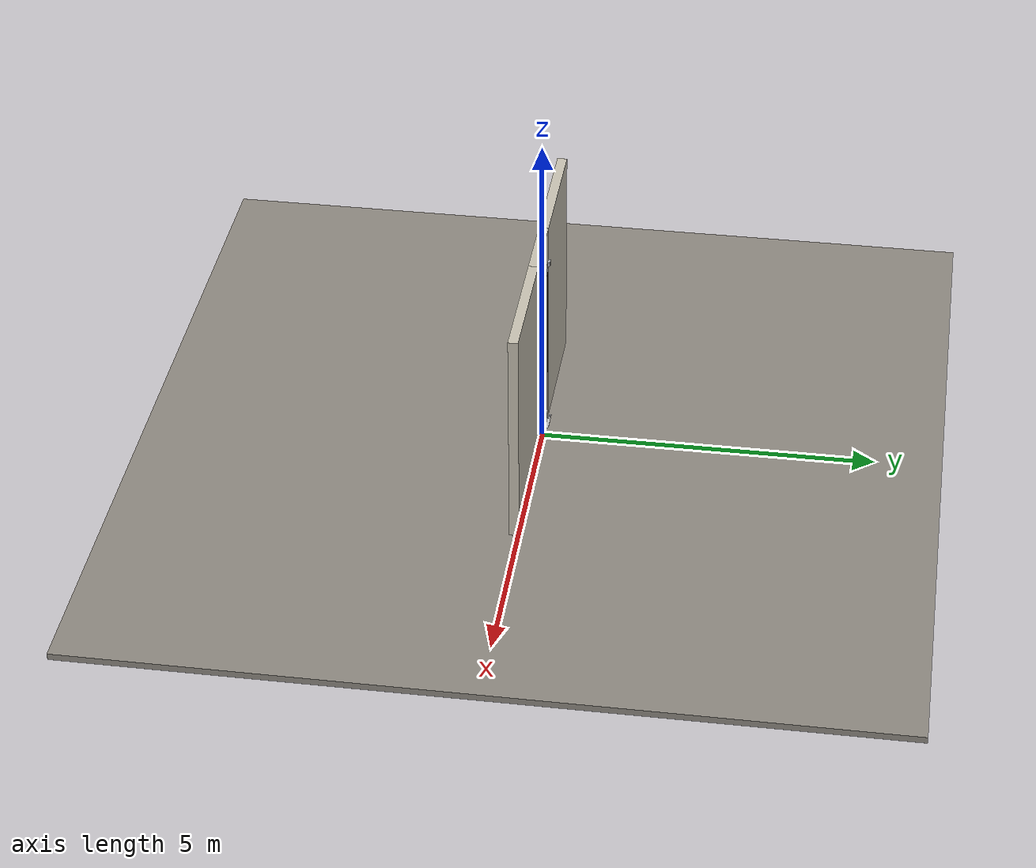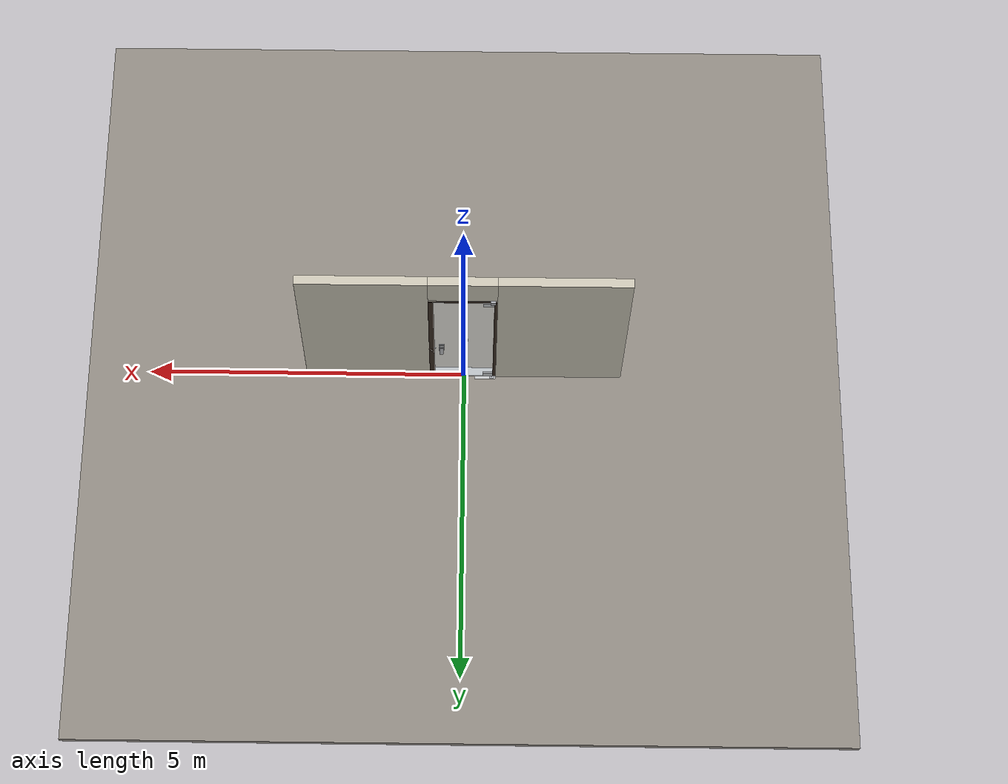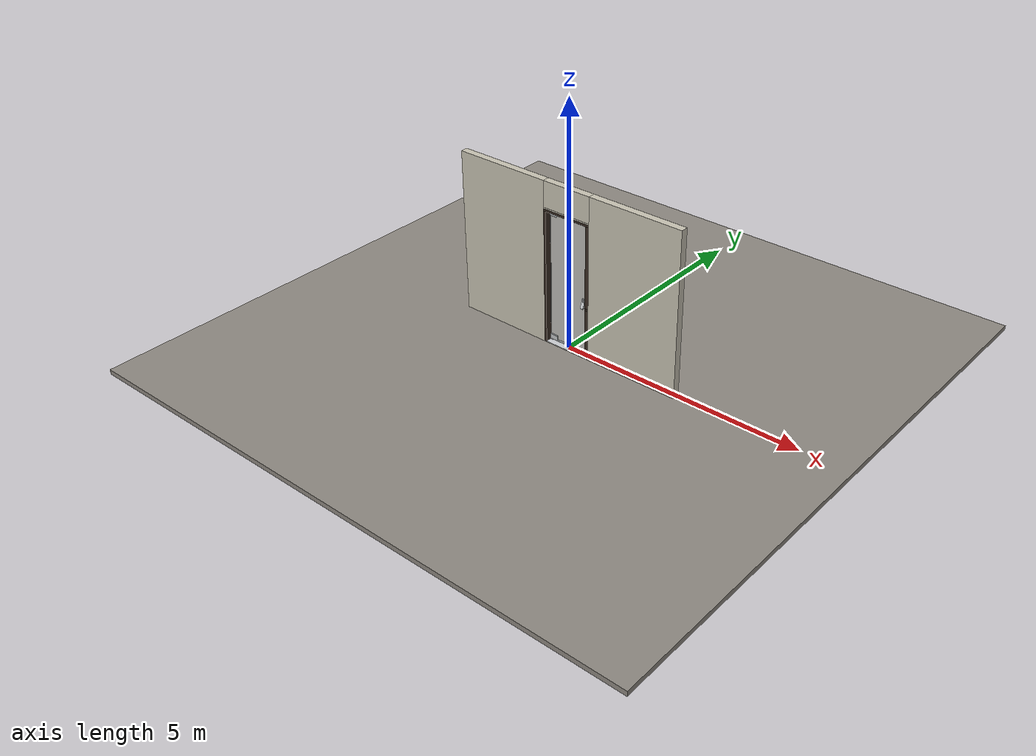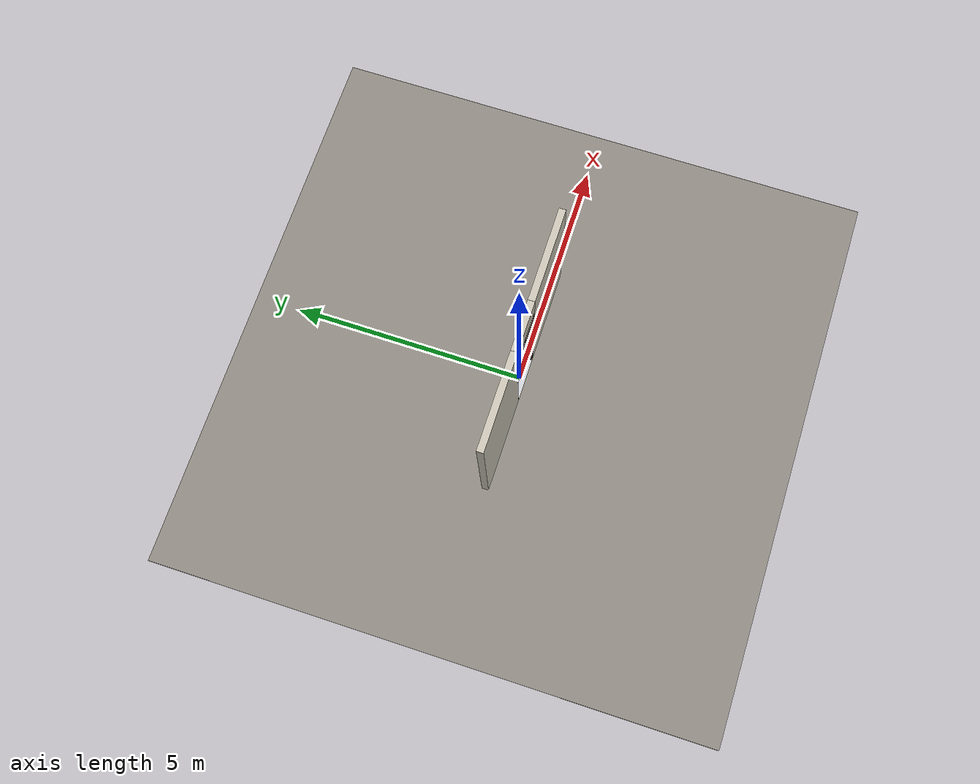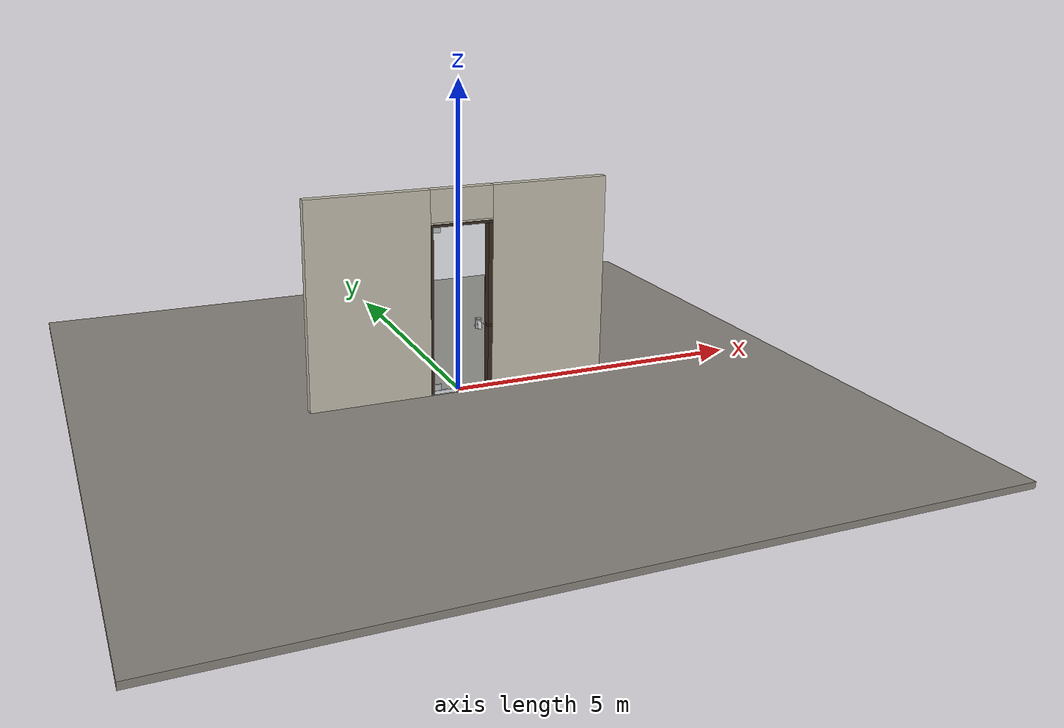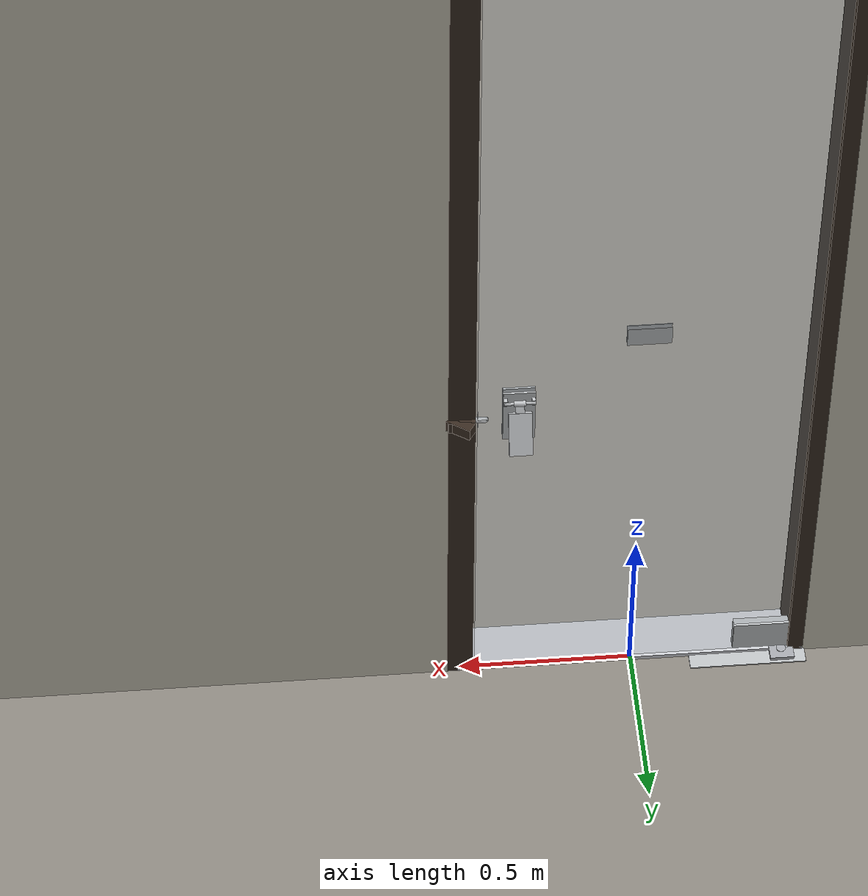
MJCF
<?xml version="1.0" ?>
<mujoco model="db0615_swing_single_full">
  <compiler angle="radian" meshdir="../../hardware" texturedir="../../textures" autolimits="true" inertiafromgeom="false"/>
  <option timestep="0.002" integrator="implicitfast" cone="elliptic" impratio="10" noslip_iterations="3">
    <flag multiccd="enable"/>
  </option>
  <size memory="16M"/>
  <default>
    <geom condim="4" solref="0.005 1" solimp="0.95 0.99 0.001"/>
    <joint solreflimit="0.005 1" solimplimit="0.95 0.99 0.001"/>
    <tendon solreflimit="0.005 1"/>
    <equality solref="0.002 1"/>
  </default>
  <visual>
    <headlight ambient="0.4 0.4 0.4" diffuse="0.7 0.7 0.7" specular="0.2 0.2 0.2"/>
    <quality shadowsize="4096"/>
    <map znear="0.01" zfar="60"/>
  </visual>
  <asset>
    <material name="mat_floor" rgba="0.55 0.53 0.5 1" specular="0.2" shininess="0.15" reflectance="0"/>
    <material name="mat_wall" rgba="0.78 0.76 0.7 1" specular="0.2" shininess="0.1" reflectance="0"/>
    <material name="mat_leaf" rgba="0.85 0.92 0.95 0.25" specular="0.2" shininess="0.95" reflectance="0.1"/>
    <material name="mat_glass_leaf" rgba="0.85 0.92 0.95 0.25" specular="0.2" shininess="0.95" reflectance="0.1"/>
    <material name="mat_patch" rgba="0.75 0.76 0.77 1" specular="0.8" shininess="0.65" reflectance="0.4"/>
    <material name="mat_hinge" rgba="0.65 0.66 0.68 1" specular="0.74" shininess="0.5" reflectance="0.36"/>
    <material name="mat_op_stainless" rgba="0.75 0.76 0.77 1" specular="0.8" shininess="0.65" reflectance="0.4"/>
    <material name="mat_bolt" rgba="0.75 0.76 0.77 1" specular="0.8" shininess="0.65" reflectance="0.4"/>
    <material name="mat_frame" rgba="0.22 0.17 0.13 1" specular="0.8" shininess="0.6" reflectance="0.4"/>
    <material name="mat_threshold" rgba="0.8 0.81 0.83 1" specular="0.8" shininess="0.6" reflectance="0.4"/>
    <material name="mat_closer" rgba="0.75 0.76 0.77 1" specular="0.8" shininess="0.65" reflectance="0.4"/>
    <material name="mat_sign" rgba="0.75 0.76 0.77 1" specular="0.8" shininess="0.65" reflectance="0.4"/>
    <texture name="skybox" type="skybox" builtin="gradient" rgb1="0.6 0.7 0.85" rgb2="0.9 0.92 0.95" width="256" height="256"/>
  </asset>
  <worldbody>
    <light name="sun" pos="1.5 -2.5 4" dir="-0.3 0.5 -0.8" directional="true" diffuse="0.8 0.8 0.8" specular="0.3 0.3 0.3" castshadow="true"/>
    <light name="fill" pos="-1.5 2.5 3" dir="0.3 -0.5 -0.7" directional="true" diffuse="0.35 0.35 0.4" castshadow="false"/>
    <camera name="robot_view" pos="0 -3.26825 2.27645" xyaxes="1 0 0 0 0.26963 0.962964" fovy="52"/>
    <camera name="far_view" pos="0 3.14925 2.27645" xyaxes="-1 0 0 0 -0.26963 0.962964" fovy="52"/>
    <camera name="iso" pos="2.43865 -2.75485 2.78985" xyaxes="0.741536 0.670913 0 -0.242917 0.268487 0.932151" fovy="46"/>
    <camera name="detail_handle" pos="0.5235 -0.746479 1.344663" xyaxes="0.97561 0.219512 0 -0.070934 0.315262 0.94635" fovy="38"/>
    <geom name="floor" type="box" size="6 6 0.05" pos="0 0 -0.05" material="mat_floor" group="0" contype="1" conaffinity="1" friction="0.8 0.005 0.0001" density="2400"/>
    <geom name="wall_left" type="box" size="0.99675 0.0725 1.678" pos="-1.50325 -0.0595 1.678" material="mat_wall" group="0" contype="1" conaffinity="1" friction="0.6 0.005 0.0001" density="800"/>
    <geom name="wall_right" type="box" size="0.98175 0.0725 1.678" pos="1.51825 -0.0595 1.678" material="mat_wall" group="0" contype="1" conaffinity="1" friction="0.6 0.005 0.0001" density="800"/>
    <geom name="wall_header" type="box" size="0.5215 0.0725 0.2625" pos="0.015 -0.0595 3.0935" material="mat_wall" group="0" contype="1" conaffinity="1" friction="0.6 0.005 0.0001" density="800"/>
    <geom name="pivot_bottom_socket" type="box" size="0.035 0.035 0.0125" pos="-0.4425 0.016 0.0025" material="mat_hinge" group="1" contype="0" conaffinity="0" density="7850"/>
    <geom name="pivot_top_bracket" type="box" size="0.035 0.035 0.0355" pos="-0.4425 0.016 2.7955" material="mat_hinge" group="1" contype="0" conaffinity="0" density="7850"/>
    <geom name="jamb_hinge" type="box" size="0.0225 0.0725 1.378" pos="-0.484 -0.0595 1.378" material="mat_frame" group="0" contype="1" conaffinity="1" friction="0.6 0.005 0.0001" density="300"/>
    <geom name="strike_1067_wall_n" type="box" size="0.0375 0.06125 0.018" pos="0.499 -0.07075 1.067" material="mat_frame" group="0" contype="1" conaffinity="1" friction="0.6 0.005 0.0001" density="300"/>
    <geom name="strike_1067_wall_p" type="box" size="0.0375 0.008 0.018" pos="0.499 0.0175 1.067" material="mat_frame" group="0" contype="1" conaffinity="1" friction="0.6 0.005 0.0001" density="300"/>
    <geom name="strike_1067_ramp" type="box" size="0.0375 0.018028 0.018" pos="0.502702 0.019699 1.067" quat="0.957092 0 0 -0.289784" material="mat_frame" group="0" contype="1" conaffinity="1" friction="0.12 0.005 0.0001" density="300"/>
    <geom name="strike_1067_back" type="box" size="0.026 0.0095 0.018" pos="0.5105 0 1.067" material="mat_frame" group="0" contype="1" conaffinity="1" friction="0.6 0.005 0.0001" density="300"/>
    <geom name="jamb_strike_0" type="box" size="0.0375 0.0725 0.5245" pos="0.499 -0.0595 0.5245" material="mat_frame" group="0" contype="1" conaffinity="1" friction="0.6 0.005 0.0001" density="300"/>
    <geom name="jamb_strike_1" type="box" size="0.0375 0.0725 0.8355" pos="0.499 -0.0595 1.9205" material="mat_frame" group="0" contype="1" conaffinity="1" friction="0.6 0.005 0.0001" density="300"/>
    <geom name="jamb_head" type="box" size="0.5215 0.0725 0.0225" pos="0.015 -0.0595 2.7785" material="mat_frame" group="0" contype="1" conaffinity="1" friction="0.6 0.005 0.0001" density="300"/>
    <geom name="head_stud" type="box" size="0.5215 0.0725 0.015" pos="0.015 -0.0595 2.816" material="mat_wall" group="0" contype="1" conaffinity="1" friction="0.6 0.005 0.0001" density="500"/>
    <geom name="threshold" type="box" size="0.5065 0.0725 0.0065" pos="0 -0.0595 0.0065" material="mat_threshold" group="0" contype="1" conaffinity="1" friction="0.5 0.005 0.0001" density="2700"/>
    <geom name="floor_spring_cover" type="box" size="0.17 0.06 0.002" pos="-0.3415 0 0.002" material="mat_closer" group="1" contype="0" conaffinity="0" density="7900"/>
    <site name="approach_point" pos="0 -1.5 0" quat="1 0 0 0" size="0.05" rgba="0.2 0.9 0.2 0.5" group="4"/>
    <site name="goal_point" pos="0 1.5 0" quat="1 0 0 0" size="0.05" rgba="0.2 0.9 0.2 0.5" group="4"/>
    <site name="door_plane_center" pos="0 0 1.378" quat="1 0 0 0" size="0.02" rgba="0.2 0.9 0.2 0.5" group="4"/>
    <body name="leaf" pos="-0.4615 0 0">
      <inertial pos="0.501548 0.000261 1.342857" mass="81.820837" quat="0.506206 0.50706 0.492848 -0.493706" diaginertia="6.015534536 43.937153353 49.946651943"/>
      <joint name="leaf_hinge" type="hinge" axis="0 0 1" pos="0.019 0.016 0" limited="true" range="0 1.570796" solreflimit="0.02 1" damping="8.345723" frictionloss="1.262809" stiffness="16.412058" springref="-2.727872" armature="0.02"/>
      <geom name="leaf_glass" type="box" size="0.457 0.006 1.3675" pos="0.46 0 1.3845" material="mat_glass_leaf" group="0" contype="1" conaffinity="1" friction="0.4 0.005 0.0001" density="1"/>
      <geom name="leaf_patch_bot" type="box" size="0.08 0.014 0.05" pos="0.083 0 0.077" material="mat_patch" group="1" contype="0" conaffinity="0" density="1"/>
      <geom name="leaf_patch_top" type="box" size="0.08 0.014 0.05" pos="0.083 0 2.692" material="mat_patch" group="1" contype="0" conaffinity="0" density="1"/>
      <geom name="pivot_bottom" type="cylinder" size="0.014 0.004" pos="0.019 0.016 0.012" material="mat_hinge" group="1" contype="0" conaffinity="0" density="7850"/>
      <geom name="pivot_top" type="cylinder" size="0.014 0.004" pos="0.019 0.016 2.756" material="mat_hinge" group="1" contype="0" conaffinity="0" density="7850"/>
      <geom name="leaf_handle_paddle_backplate_n" type="box" size="0.044 0.003 0.09" pos="0.805 -0.009 1.086895" material="mat_op_stainless" group="0" contype="1" conaffinity="1" friction="0.6 0.005 0.0001" density="3000"/>
      <geom name="leaf_handle_paddle_bearing_n_-1" type="box" size="0.005 0.006 0.009" pos="0.767 -0.018 1.149895" material="mat_op_stainless" group="0" contype="1" conaffinity="1" friction="0.6 0.005 0.0001" density="3000"/>
      <geom name="leaf_handle_paddle_bearing_n_1" type="box" size="0.005 0.006 0.009" pos="0.843 -0.018 1.149895" material="mat_op_stainless" group="0" contype="1" conaffinity="1" friction="0.6 0.005 0.0001" density="3000"/>
      <geom name="leaf_handle_paddle_pin_n" type="cylinder" size="0.004 0.043" pos="0.805 -0.024 1.149895" quat="0.707107 0 0.707107 0" material="mat_op_stainless" group="1" contype="0" conaffinity="0" density="7850"/>
      <geom name="leaf_handle_paddle_backplate_p" type="box" size="0.044 0.003 0.09" pos="0.805 0.009 1.086895" material="mat_op_stainless" group="0" contype="1" conaffinity="1" friction="0.6 0.005 0.0001" density="3000"/>
      <geom name="leaf_handle_paddle_bearing_p_-1" type="box" size="0.005 0.006 0.009" pos="0.767 0.018 1.149895" material="mat_op_stainless" group="0" contype="1" conaffinity="1" friction="0.6 0.005 0.0001" density="3000"/>
      <geom name="leaf_handle_paddle_bearing_p_1" type="box" size="0.005 0.006 0.009" pos="0.843 0.018 1.149895" material="mat_op_stainless" group="0" contype="1" conaffinity="1" friction="0.6 0.005 0.0001" density="3000"/>
      <geom name="leaf_handle_paddle_pin_p" type="cylinder" size="0.004 0.043" pos="0.805 0.024 1.149895" quat="0.707107 0 0.707107 0" material="mat_op_stainless" group="1" contype="0" conaffinity="0" density="7850"/>
      <geom name="leaf_latch_bolt_faceplate" type="box" size="0.0006 0.004 0.028" pos="0.9164 0 1.067" material="mat_bolt" group="1" contype="0" conaffinity="0" density="8500"/>
      <geom name="sign_push" type="box" size="0.06 0.001 0.03" pos="0.46 -0.007 1.367" material="mat_sign" group="2" contype="0" conaffinity="0" density="7900"/>
      <geom name="sign_pull" type="box" size="0.06 0.001 0.03" pos="0.46 0.007 1.367" material="mat_sign" group="2" contype="0" conaffinity="0" density="7900"/>
      <site name="leaf_edge_mid" pos="0.917 0 1.3675" quat="1 0 0 0" size="0.02" rgba="0.2 0.9 0.2 0.5" group="4"/>
      <body name="leaf_handle" pos="0.805 -0.024 1.149895">
        <inertial pos="0 -0.031074 -0.073496" mass="0.333798" quat="-0.390699 0.589368 0.589368 0.390699" diaginertia="0.00010582 0.00062862 0.000726597"/>
        <joint name="leaf_handle_hinge" type="hinge" axis="1 0 0" limited="true" range="0 0.4" damping="0.27663" frictionloss="0.056" stiffness="1.5" springref="-1" armature="0.01"/>
        <geom name="leaf_handle_paddle_col_n" type="box" size="0.032 0.006 0.063" pos="0 -0.035048 -0.082895" quat="0.980067 -0.198669 0 0" material="mat_op_stainless" group="0" contype="1" conaffinity="1" friction="0.6 0.005 0.0001" density="3000"/>
        <geom name="leaf_handle_paddle_neck_n" type="box" size="0.012 0.004 0.021" pos="0 -0.008178 -0.019342" quat="0.980067 -0.198669 0 0" material="mat_op_stainless" group="0" contype="1" conaffinity="1" friction="0.6 0.005 0.0001" density="3000"/>
        <geom name="leaf_handle_paddle_hub_n" type="cylinder" size="0.008 0.016" pos="0 0 0" quat="0.707107 0 0.707107 0" material="mat_op_stainless" group="1" contype="0" conaffinity="0" density="3000"/>
        <site name="leaf_handle_grip_n" pos="0 -0.040574 -0.080559" quat="0.833492 0.552531 0 0" size="0.012" rgba="0.2 0.9 0.2 0.5" group="4"/>
      </body>
      <body name="leaf_handle_paddle_follower_p" pos="0.805 0.024 1.149895">
        <inertial pos="0 0.031074 -0.073496" mass="0.333798" quat="0.589368 -0.390699 -0.390699 -0.589368" diaginertia="0.00010582 0.00062862 0.000726597"/>
        <joint name="leaf_handle_paddle_follower_p_hinge" type="hinge" axis="1 0 0" limited="true" range="0 0.4" armature="0.002"/>
        <geom name="leaf_handle_paddle_col_p" type="box" size="0.032 0.006 0.063" pos="0 0.035048 -0.082895" quat="0.980067 0.198669 0 0" material="mat_op_stainless" group="0" contype="1" conaffinity="1" friction="0.6 0.005 0.0001" density="3000"/>
        <geom name="leaf_handle_paddle_neck_p" type="box" size="0.012 0.004 0.021" pos="0 0.008178 -0.019342" quat="0.980067 0.198669 0 0" material="mat_op_stainless" group="0" contype="1" conaffinity="1" friction="0.6 0.005 0.0001" density="3000"/>
        <geom name="leaf_handle_paddle_hub_p" type="cylinder" size="0.008 0.016" pos="0 0 0" quat="0.707107 0 0.707107 0" material="mat_op_stainless" group="1" contype="0" conaffinity="0" density="3000"/>
        <site name="leaf_handle_grip_p" pos="0 0.029521 -0.085232" quat="0.552531 0.833492 0 0" size="0.012" rgba="0.2 0.9 0.2 0.5" group="4"/>
      </body>
      <body name="leaf_latch_bolt" pos="0.917 0 1.067">
        <inertial pos="-0.0055 0 0" mass="0.074627" quat="0.92388 -0.382683 0 0" diaginertia="0.000002271 0.000013255 0.000013255"/>
        <joint name="leaf_latch_bolt_slide" type="slide" axis="-1 0 0" limited="true" range="0 0.019" damping="2" frictionloss="0.3" stiffness="550" springref="-0.01" armature="0.1"/>
        <geom name="leaf_latch_bolt_capsule" type="capsule" size="0.008 0.0165" pos="-0.0055 0 0" quat="0.707107 0 0.707107 0" material="mat_bolt" group="0" contype="1" conaffinity="1" friction="0.2 0.005 0.0001" density="8500"/>
      </body>
    </body>
  </worldbody>
  <tendon>
    <fixed name="leaf_latch_bolt_coupling" limited="true" range="0 10">
      <joint joint="leaf_latch_bolt_slide" coef="1"/>
      <joint joint="leaf_handle_hinge" coef="-0.051351"/>
    </fixed>
  </tendon>
  <equality>
    <joint name="leaf_handle_paddle_cam_p" joint1="leaf_handle_paddle_follower_p_hinge" joint2="leaf_handle_hinge" polycoef="0 1 0 0 0" active="true"/>
  </equality>
  <sensor>
    <jointpos name="leaf_hinge_pos" joint="leaf_hinge"/>
    <jointvel name="leaf_hinge_vel" joint="leaf_hinge"/>
    <jointpos name="leaf_handle_hinge_pos" joint="leaf_handle_hinge"/>
    <jointvel name="leaf_handle_hinge_vel" joint="leaf_handle_hinge"/>
    <jointpos name="leaf_latch_bolt_slide_pos" joint="leaf_latch_bolt_slide"/>
    <jointvel name="leaf_latch_bolt_slide_vel" joint="leaf_latch_bolt_slide"/>
  </sensor>
</mujoco>
